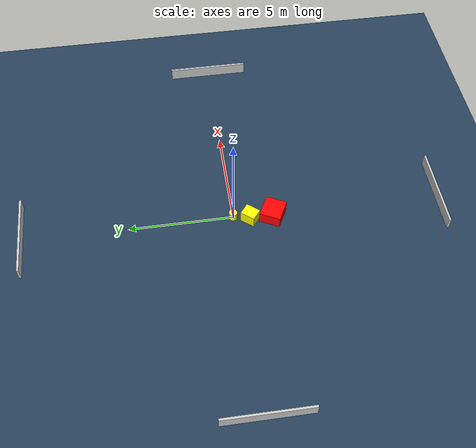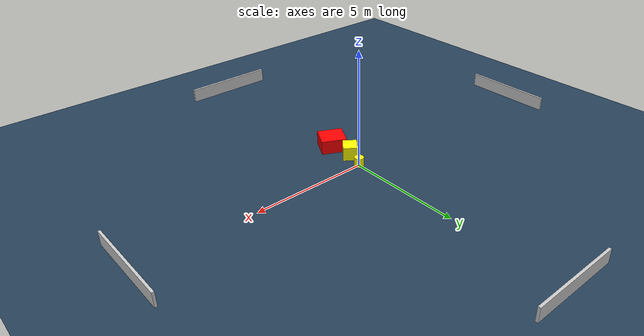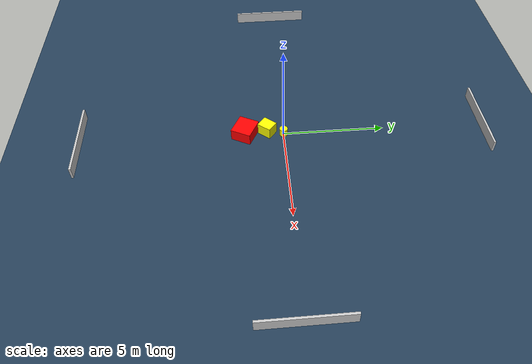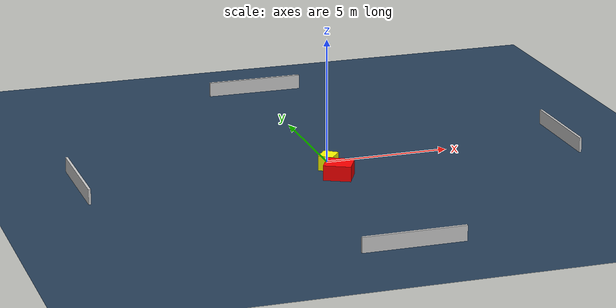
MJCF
<?xml version="1.0" ?>
<mujoco model="generated_environment">
  <option timestep="0.01" integrator="RK4" cone="elliptic"/>
  <default>
    <geom density="1"/>
  </default>
  <asset>
    <texture builtin="gradient" height="3072" name="skybox" rgb1="0.3 0.5 0.7" rgb2="0 0 0" type="skybox" width="512"/>
    <texture builtin="checker" height="300" name="groundplane" rgb1="0.2 0.3 0.4" rgb2="0.1 0.2 0.3" type="2d" width="300"/>
    <material name="groundplane" reflectance="0.2" texrepeat="5 5" texture="groundplane"/>
  </asset>
  <worldbody>
    <light dir="0 0 -1" directional="true" pos="0 0 1.5"/>
    <geom condim="3" friction="0.5 0.005 0.001" material="groundplane" name="floor" pos="0 0 0" size="0 0 0.05" type="plane"/>
    <body name="walls">
      <geom name="wall_1" condim="4" pos="-10.0 0.0 0.3" rgba="0.800000011920929 0.800000011920929 0.800000011920929 1.0" size="0.05 2.0 0.3" type="box"/>
      <geom name="wall_2" condim="4" pos="10.0 0.0 0.3" rgba="0.800000011920929 0.800000011920929 0.800000011920929 1.0" size="0.05 2.0 0.3" type="box"/>
      <geom name="wall_3" condim="4" pos="0.0 -10.0 0.3" rgba="0.800000011920929 0.800000011920929 0.800000011920929 1.0" size="2.0 0.05 0.3" type="box"/>
      <geom name="wall_4" condim="4" pos="0.0 10.0 0.3" rgba="0.800000011920929 0.800000011920929 0.800000011920929 1.0" size="2.0 0.05 0.3" type="box"/>
    </body>
    <body name="robot">
      <joint name="joint_x" type="slide" pos="0 0 0" axis="1 0 0"/>
      <joint name="joint_y" type="slide" pos="0 0 0" axis="0 1 0"/>
      <geom name="robot" type="cylinder" pos="0.0 0.0 0.2" size="0.2 0.2 0.0" mass="5.0" friction="1.0 0.005 0.0001" condim="4" rgba="1.0 1.0 0.0 1.0"/>
    </body>
    <body name="obstacle_1_movable">
      <geom name="obstacle_1_movable" condim="4" pos="-0.20149391802122119 -0.7985337631421694 0.3" euler="0 0 51.07158146538157" friction="0.0 0.005 0.001" rgba="1.0 1.0 0.0 1.0" size="0.357232672012978 0.3026361311840884 0.3" type="box" mass="0.1"/>
      <joint type="free"/>
    </body>
    <body name="obstacle_2_static">
      <geom name="obstacle_2_static" condim="4" pos="-0.13594101180708218 -1.9023146412681653 0.3" euler="0 0 152.9260074282085" friction="0.0 0.005 0.001" rgba="1.0 0.0 0.0 1.0" size="0.5428770389898582 0.5070790196985009 0.3" type="box"/>
    </body>
  </worldbody>
  <actuator>
    <motor name="actuator_x" joint="joint_x" gear="1" ctrlrange="-1 1"/>
    <motor name="actuator_y" joint="joint_y" gear="1" ctrlrange="-1 1"/>
  </actuator>
</mujoco>
